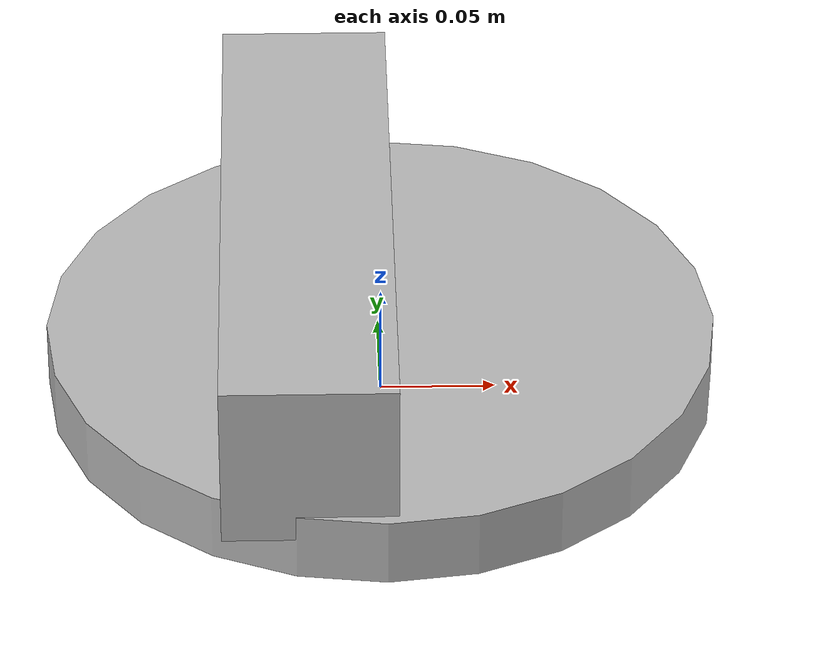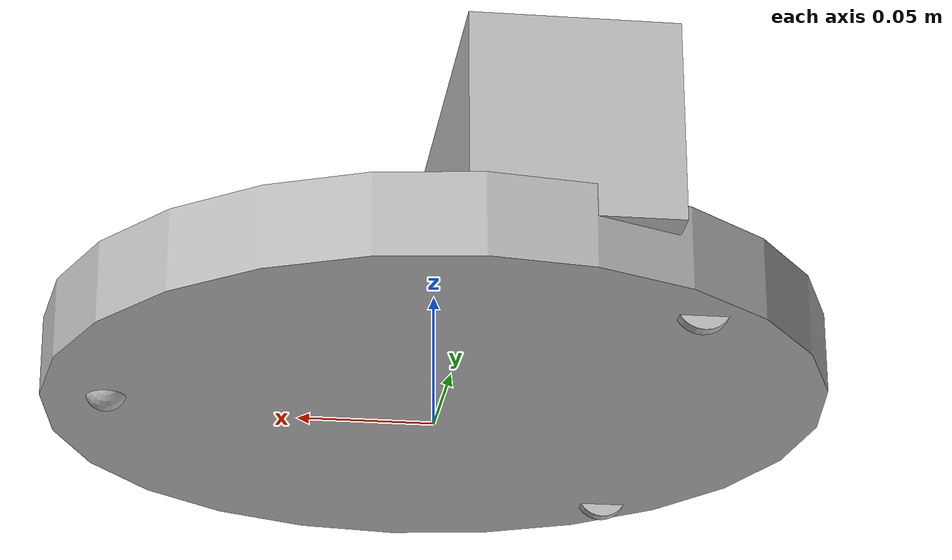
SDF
<?xml version='1.0'?>
<sdf version='1.3'>
  <model name="my_robot">
    <link name='chassis'>
      <pose>0 0 0.020 0 0 0</pose>
      <inertial>
        <mass>3.7</mass>
        <pose>0 0 0.00761 0 0 0</pose>
        <inertia>
          <ixx>1.0</ixx>
          <ixy>0.0</ixy>
          <ixz>0.0</ixz>
          <iyy>1.0</iyy>
          <iyz>0.0</iyz>
          <izz>1.0</izz>
        </inertia>
      </inertial>

      <collision name='collision'>
        <geometry>
          <cylinder>
            <radius>.144</radius>
            <length>.030</length>
          </cylinder>
        </geometry>
      </collision>

      <visual name='visual'>
        <geometry>
          <cylinder>
            <radius>.144</radius>
            <length>.030</length>
          </cylinder>
        </geometry>
      </visual>

      <collision name='caster_collision'>
        <pose>0.12 0 -0.012 1.5707 0 0</pose>
        <geometry>
          <sphere>
            <radius>.008</radius>
          </sphere>
        </geometry>

        <surface>
          <friction>
            <ode>
              <mu>0</mu>
              <mu2>0</mu2>
              <slip1>1.0</slip1>
              <slip2>1.0</slip2>
            </ode>
          </friction>
        </surface>
      </collision>

      <visual name='caster_visual'>
        <pose>0.12 0 -0.012 1.5707 0 0</pose>
        <geometry>
          <sphere>
            <radius>.008</radius>
          </sphere>
        </geometry>
      </visual>
    </link>

    <link name="left_wheel">
      <pose>-0.08 0.1 0.01 0 1.5707 1.5707</pose>
      <collision name="collision">
        <geometry>
          <cylinder>
            <radius>.01</radius>
            <length>.005</length>
          </cylinder>
        </geometry>
      </collision>
      <visual name="visual">
        <geometry>
          <cylinder>
            <radius>.01</radius>
            <length>.005</length>
          </cylinder>
        </geometry>
      </visual>
    </link>

    <link name="right_wheel">
      <pose>-0.08 -0.1 0.01 0 1.5707 1.5707</pose>
      <collision name="collision">
        <geometry>
          <cylinder>
            <radius>.01</radius>
            <length>.005</length>
          </cylinder>
        </geometry>
      </collision>
      <visual name="visual">
        <geometry>
          <cylinder>
            <radius>.01</radius>
            <length>.005</length>
          </cylinder>
        </geometry>
      </visual>
    </link>

    <joint type="revolute" name="left_wheel_hinge">
      <pose>0 0 0 0 0 0</pose>
      <child>left_wheel</child>
      <parent>chassis</parent>
      <axis>
        <xyz>0 -1 0</xyz>
      </axis>
    </joint>

    <joint type="revolute" name="right_wheel_hinge">
      <pose>0 0 0 0 0 0</pose>
      <child>right_wheel</child>
      <parent>chassis</parent>
      <axis>
        <xyz>0 -1 0</xyz>
      </axis>
    </joint>

    <link name="kinect_link">
      <pose>-0.0315 0 0.06 0 0 3.140</pose>
      <collision name="collision">
        <geometry>
          <box>
            <size>0.07271 0.27794 0.073</size>
          </box>
        </geometry>
      </collision>
      <visual name="visual">
        <geometry>
          <box>
            <size>0.07271 0.27794 0.073</size>
          </box>
        </geometry>
      </visual>

      <sensor name="kinect_sensor" type="depth">
        <update_rate>20</update_rate>
        <camera>
          <horizontal_fov>1.04719755</horizontal_fov>
          <image>
            <width>640</width>
            <height>480</height>
            <format>R8G8B8</format>
          </image>
          <clip>
            <near>0.05</near>
            <far>3</far>
          </clip>
        </camera>
      </sensor>
    </link>

    <joint name="kinect_joint" type="revolute">
      <child>kinect_link</child>
      <parent>chassis</parent>
      <axis>
        <xyz>0 0 1</xyz>
        <limit>
          <upper>0</upper>
          <lower>0</lower>
        </limit>
      </axis>
    </joint>

    <plugin name="diff_drive" filename="libLunaDiffDrivePlugin.so">
      <left_wheel_hinge>left_wheel_hinge</left_wheel_hinge>
      <right_wheel_hinge>right_wheel_hinge</right_wheel_hinge>
      <torque>5</torque>
    </plugin>
  </model>
</sdf>
